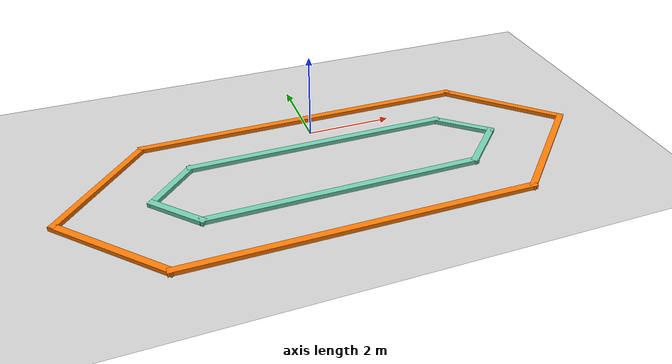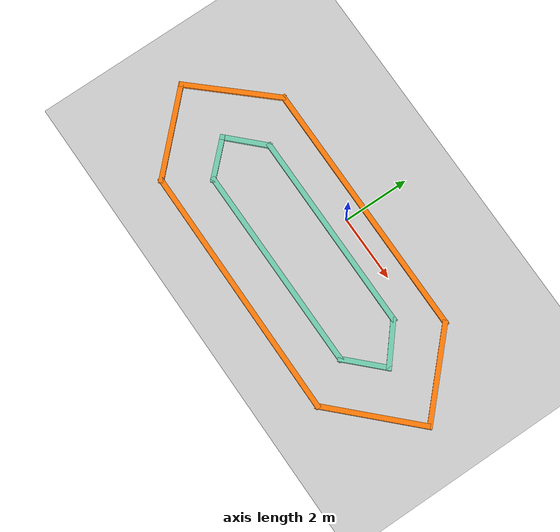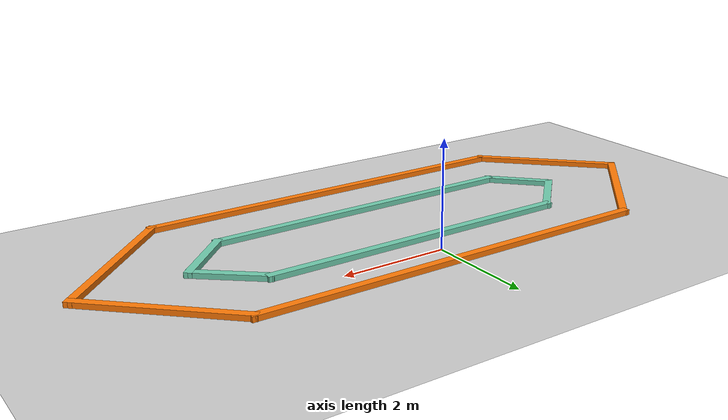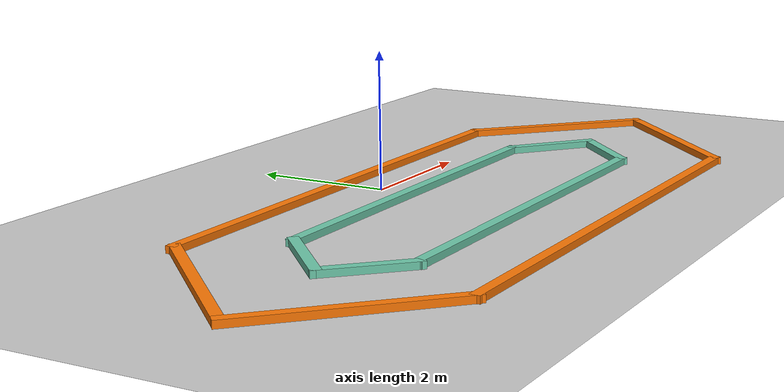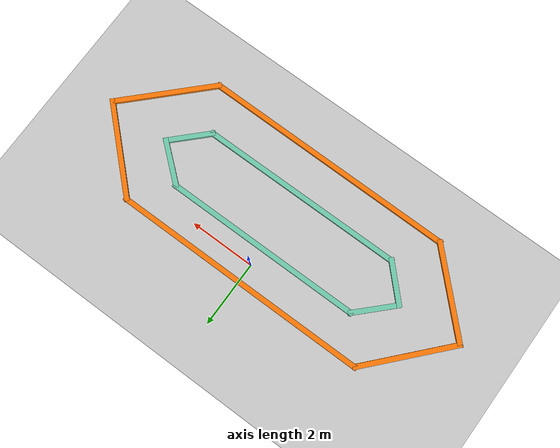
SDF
<sdf version="1.7">
 <world name="default">
  <light name="sun" type="directional">
   <pose>0 0 10 0 -0 0</pose>
   <diffuse>0.8 0.8 0.8 1</diffuse>
   <specular>0.2 0.2 0.2 1</specular>
   <attenuation>
    <range>1000</range>
    <constant>0.9</constant>
    <linear>0.01</linear>
    <quadratic>0.001</quadratic>
   </attenuation>
   <direction>-0.5 0.1 -0.9</direction>
   <spot><inner_angle>0</inner_angle><outer_angle>0</outer_angle><falloff>0</falloff></spot>
  </light>
  <model name="ground_plane">
   <static>1</static>
   <link name="link">
    <collision name="collision">
     <geometry><plane><normal>0 0 1</normal><size>100 100</size></plane></geometry>
     <surface>
      <contact><collide_bitmask>65535</collide_bitmask></contact>
      <friction><ode><mu>100</mu><mu2>50</mu2></ode></friction>
     </surface>
    </collision>
    <visual name="visual">
     <cast_shadows>0</cast_shadows>
     <geometry><plane><normal>0 0 1</normal><size>100 100</size></plane></geometry>
     <material>
      <script><uri>file://media/materials/scripts/gazebo.material</uri><name>Gazebo/Grey</name></script>
     </material>
    </visual>
   </link>
  </model>
  <gravity>0 0 -9.8</gravity>
  <magnetic_field>6e-06 2.3e-05 -4.2e-05</magnetic_field>
  <atmosphere type="adiabatic"/>
  <physics type="ode">
   <max_step_size>0.001</max_step_size>
   <real_time_factor>1</real_time_factor>
   <real_time_update_rate>1000</real_time_update_rate>
  </physics>
  <scene><ambient>0.4 0.4 0.4 1</ambient><background>0.7 0.7 0.7 1</background><shadows>1</shadows></scene>
  <spherical_coordinates>
   <surface_model>EARTH_WGS84</surface_model>
   <latitude_deg>0</latitude_deg>
   <longitude_deg>0</longitude_deg>
   <elevation>0</elevation>
   <heading_deg>0</heading_deg>
  </spherical_coordinates>
  <model name="test">
   <pose>0.074938 -1.53988 0 0 -0 0</pose>
   <link name="Wall_11">
    <collision name="Wall_11_Collision">
     <geometry><box><size>6.18387 0.15 0.1</size></box></geometry>
     <pose>0 0 0.05 0 -0 0</pose>
    </collision>
    <visual name="Wall_11_Visual">
     <pose>0 0 0.05 0 -0 0</pose>
     <geometry><box><size>6.18387 0.15 0.1</size></box></geometry>
     <material>
      <script><uri>file://media/materials/scripts/gazebo.material</uri><name>Gazebo/Grey</name></script>
      <ambient>0.435294 0.796078 0.67451 1</ambient>
     </material>
     <meta><layer>0</layer></meta>
    </visual>
    <pose>-0.0381 0.988229 0 0 -0 0</pose>
   </link>
   <link name="Wall_12">
    <collision name="Wall_12_Collision">
     <geometry><box><size>1.4931 0.15 0.1</size></box></geometry>
     <pose>0 0 0.05 0 -0 0</pose>
    </collision>
    <visual name="Wall_12_Visual">
     <pose>0 0 0.05 0 -0 0</pose>
     <geometry><box><size>1.4931 0.15 0.1</size></box></geometry>
     <material>
      <script><uri>file://media/materials/scripts/gazebo.material</uri><name>Gazebo/Grey</name></script>
      <ambient>0.435294 0.796078 0.67451 1</ambient>
     </material>
     <meta><layer>0</layer></meta>
    </visual>
    <pose>3.49194 0.541754 0 0 -0 -0.701221</pose>
   </link>
   <link name="Wall_13">
    <collision name="Wall_13_Collision">
     <geometry><box><size>1.5 0.15 0.1</size></box></geometry>
     <pose>0 0 0.05 0 -0 0</pose>
    </collision>
    <visual name="Wall_13_Visual">
     <pose>0 0 0.05 0 -0 0</pose>
     <geometry><box><size>1.5 0.15 0.1</size></box></geometry>
     <material>
      <script><uri>file://media/materials/scripts/gazebo.material</uri><name>Gazebo/Grey</name></script>
      <ambient>0.435294 0.796078 0.67451 1</ambient>
     </material>
     <meta><layer>0</layer></meta>
    </visual>
    <pose>3.52774 -0.368793 0 0 -0 -2.35619</pose>
   </link>
   <link name="Wall_14">
    <collision name="Wall_14_Collision">
     <geometry><box><size>6.32341 0.15 0.1</size></box></geometry>
     <pose>0 0 0.05 0 -0 0</pose>
    </collision>
    <visual name="Wall_14_Visual">
     <pose>0 0 0.05 0 -0 0</pose>
     <geometry><box><size>6.32341 0.15 0.1</size></box></geometry>
     <material>
      <script><uri>file://media/materials/scripts/gazebo.material</uri><name>Gazebo/Grey</name></script>
      <ambient>0.435294 0.796078 0.67451 1</ambient>
     </material>
     <meta><layer>0</layer></meta>
    </visual>
    <pose>-0.03626 -0.850368 0 0 -0 -3.14021</pose>
   </link>
   <link name="Wall_15">
    <collision name="Wall_15_Collision">
     <geometry><box><size>1.40524 0.15 0.1</size></box></geometry>
     <pose>0 0 0.05 0 -0 0</pose>
    </collision>
    <visual name="Wall_15_Visual">
     <pose>0 0 0.05 0 -0 0</pose>
     <geometry><box><size>1.40524 0.15 0.1</size></box></geometry>
     <material>
      <script><uri>file://media/materials/scripts/gazebo.material</uri><name>Gazebo/Grey</name></script>
      <ambient>0.435294 0.796078 0.67451 1</ambient>
     </material>
     <meta><layer>0</layer></meta>
    </visual>
    <pose>-3.57291 -0.417118 0 0 -0 2.34039</pose>
   </link>
   <link name="Wall_16">
    <collision name="Wall_16_Collision">
     <geometry><box><size>1.5 0.15 0.1</size></box></geometry>
     <pose>0 0 0.05 0 -0 0</pose>
    </collision>
    <visual name="Wall_16_Visual">
     <pose>0 0 0.05 0 -0 0</pose>
     <geometry><box><size>1.5 0.15 0.1</size></box></geometry>
     <material>
      <script><uri>file://media/materials/scripts/gazebo.material</uri><name>Gazebo/Grey</name></script>
      <ambient>0.435294 0.796078 0.67451 1</ambient>
     </material>
     <meta><layer>0</layer></meta>
    </visual>
    <pose>-3.53233 0.510932 0 0 -0 0.785398</pose>
   </link>
   <link name="Wall_4">
    <collision name="Wall_4_Collision">
     <geometry><box><size>8 0.15 0.1</size></box></geometry>
     <pose>0 0 0.05 0 -0 0</pose>
    </collision>
    <visual name="Wall_4_Visual">
     <pose>0 0 0.05 0 -0 0</pose>
     <geometry><box><size>8 0.15 0.1</size></box></geometry>
     <material>
      <script><uri>file://media/materials/scripts/gazebo.material</uri><name>Gazebo/Grey</name></script>
      <ambient>0.996078 0.47451 0.0196078 1</ambient>
     </material>
     <meta><layer>0</layer></meta>
    </visual>
    <pose>-0.068163 2.11268 0 0 -0 0</pose>
   </link>
   <link name="Wall_5">
    <collision name="Wall_5_Collision">
     <geometry><box><size>3.05431 0.15 0.1</size></box></geometry>
     <pose>0 0 0.05 0 -0 0</pose>
    </collision>
    <visual name="Wall_5_Visual">
     <pose>0 0 0.05 0 -0 0</pose>
     <geometry><box><size>3.05431 0.15 0.1</size></box></geometry>
     <material>
      <script><uri>file://media/materials/scripts/gazebo.material</uri><name>Gazebo/Grey</name></script>
      <ambient>0.996078 0.47451 0.0196078 1</ambient>
     </material>
     <meta><layer>0</layer></meta>
    </visual>
    <pose>4.90655 1.09603 0 0 -0 -0.762857</pose>
   </link>
   <link name="Wall_6">
    <collision name="Wall_6_Collision">
     <geometry><box><size>3.25 0.15 0.1</size></box></geometry>
     <pose>0 0 0.05 0 -0 0</pose>
    </collision>
    <visual name="Wall_6_Visual">
     <pose>0 0 0.05 0 -0 0</pose>
     <geometry><box><size>3.25 0.15 0.1</size></box></geometry>
     <material>
      <script><uri>file://media/materials/scripts/gazebo.material</uri><name>Gazebo/Grey</name></script>
      <ambient>0.996078 0.47451 0.0196078 1</ambient>
     </material>
     <meta><layer>0</layer></meta>
    </visual>
    <pose>4.86025 -1.00341 0 0 -0 -2.35619</pose>
   </link>
   <link name="Wall_7">
    <collision name="Wall_7_Collision">
     <geometry><box><size>7.85528 0.15 0.1</size></box></geometry>
     <pose>0 0 0.05 0 -0 0</pose>
    </collision>
    <visual name="Wall_7_Visual">
     <pose>0 0 0.05 0 -0 0</pose>
     <geometry><box><size>7.85528 0.15 0.1</size></box></geometry>
     <material>
      <script><uri>file://media/materials/scripts/gazebo.material</uri><name>Gazebo/Grey</name></script>
      <ambient>0.996078 0.47451 0.0196078 1</ambient>
     </material>
     <meta><layer>0</layer></meta>
    </visual>
    <pose>-0.088388 -2.08631 0 0 -0 3.13819</pose>
   </link>
   <link name="Wall_8">
    <collision name="Wall_8_Collision">
     <geometry><box><size>3 0.15 0.1</size></box></geometry>
     <pose>0 0 0.05 0 -0 0</pose>
    </collision>
    <visual name="Wall_8_Visual">
     <pose>0 0 0.05 0 -0 0</pose>
     <geometry><box><size>3 0.15 0.1</size></box></geometry>
     <material>
      <script><uri>file://media/materials/scripts/gazebo.material</uri><name>Gazebo/Grey</name></script>
      <ambient>0.996078 0.47451 0.0196078 1</ambient>
     </material>
     <meta><layer>0</layer></meta>
    </visual>
    <pose>-4.94864 -1.06557 0 0 -0 2.35619</pose>
   </link>
   <link name="Wall_9">
    <collision name="Wall_9_Collision">
     <geometry><box><size>3.04819 0.15 0.1</size></box></geometry>
     <pose>0 0 0.05 0 -0 0</pose>
    </collision>
    <visual name="Wall_9_Visual">
     <pose>0 0 0.05 0 -0 0</pose>
     <geometry><box><size>3.04819 0.15 0.1</size></box></geometry>
     <material>
      <script><uri>file://media/materials/scripts/gazebo.material</uri><name>Gazebo/Grey</name></script>
      <ambient>0.996078 0.47451 0.0196078 1</ambient>
     </material>
     <meta><layer>0</layer></meta>
    </visual>
    <pose>-4.9681 1.02737 0 0 -0 0.832822</pose>
   </link>
   <static>1</static>
  </model>
 </world>
</sdf>
